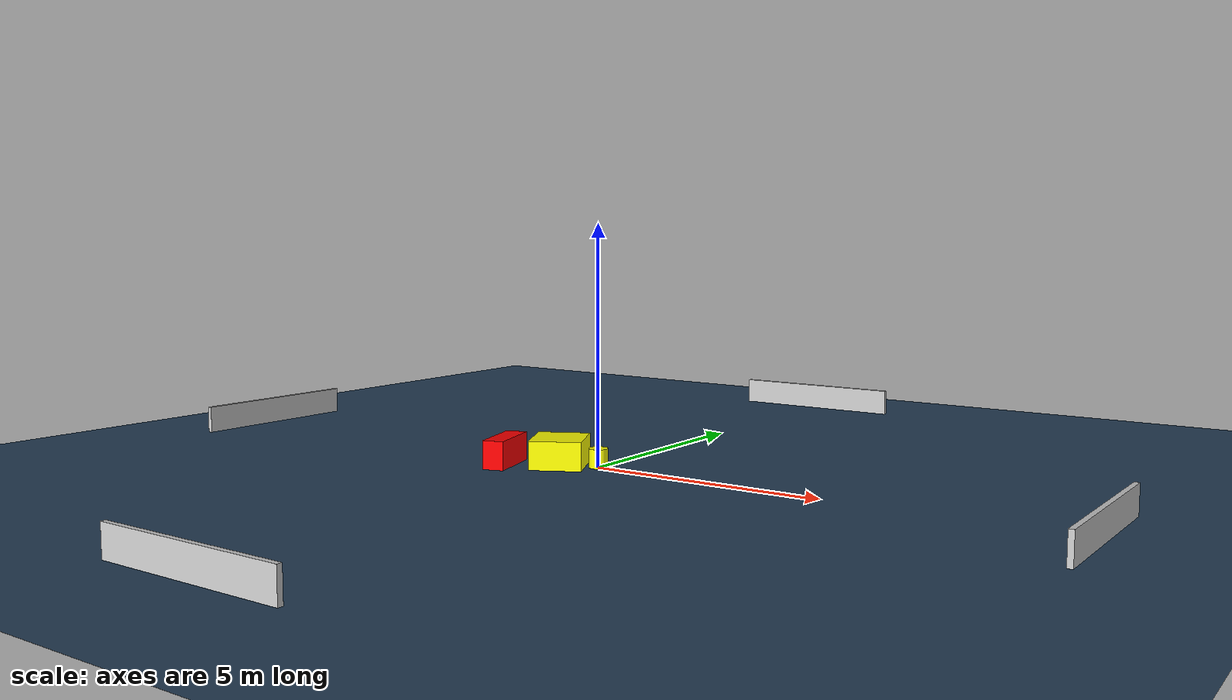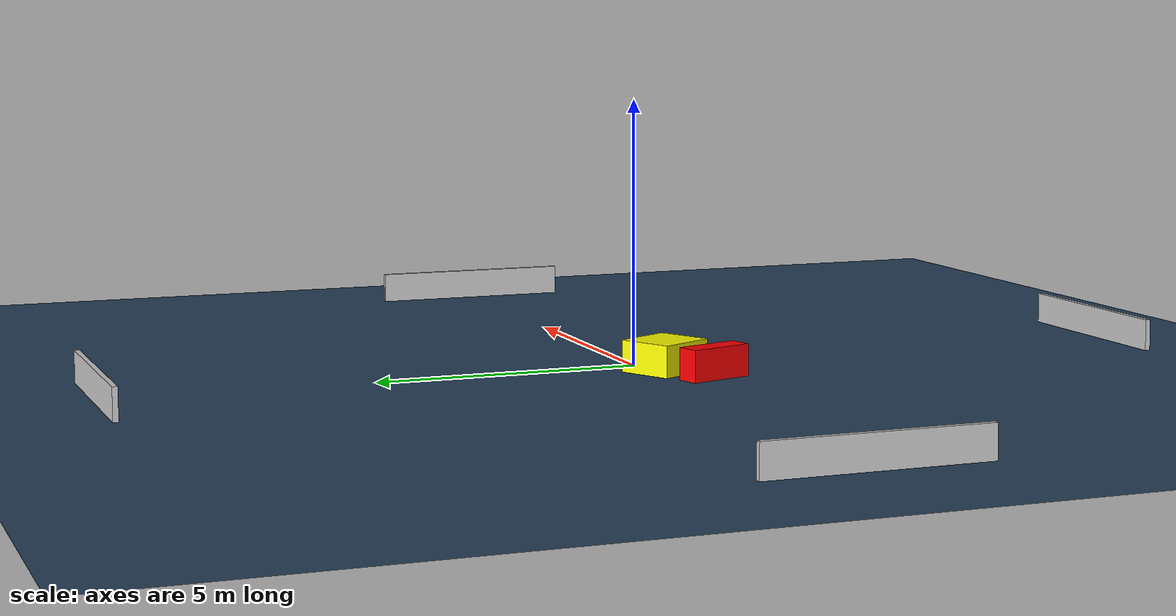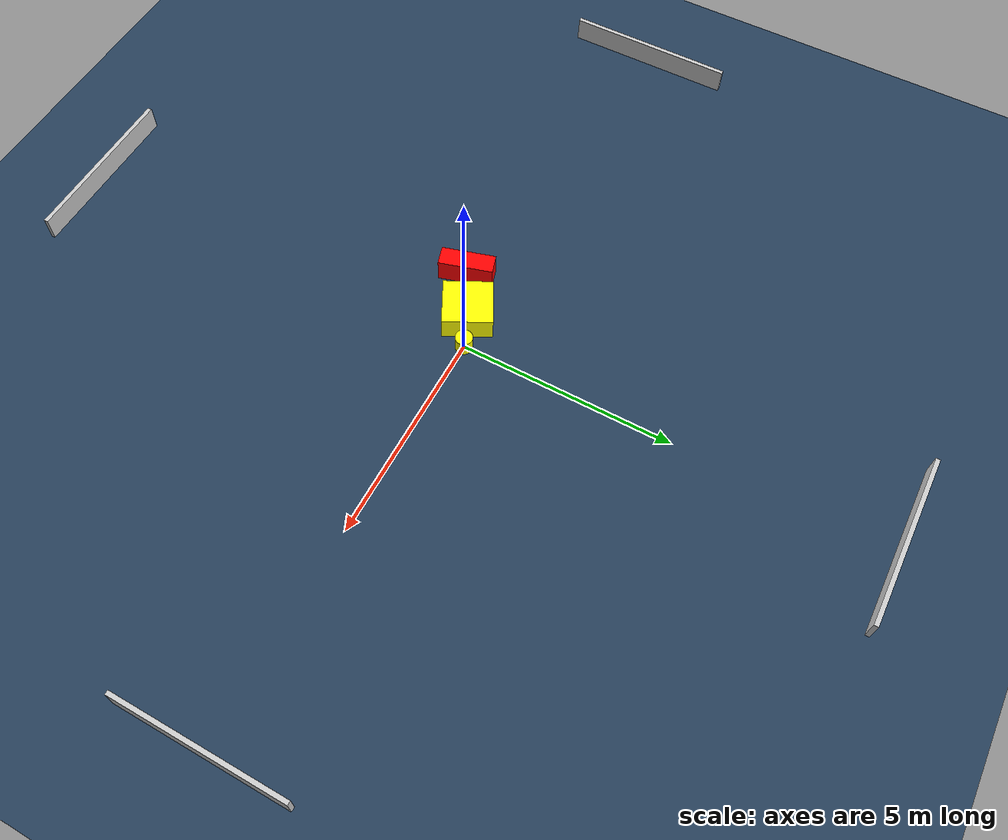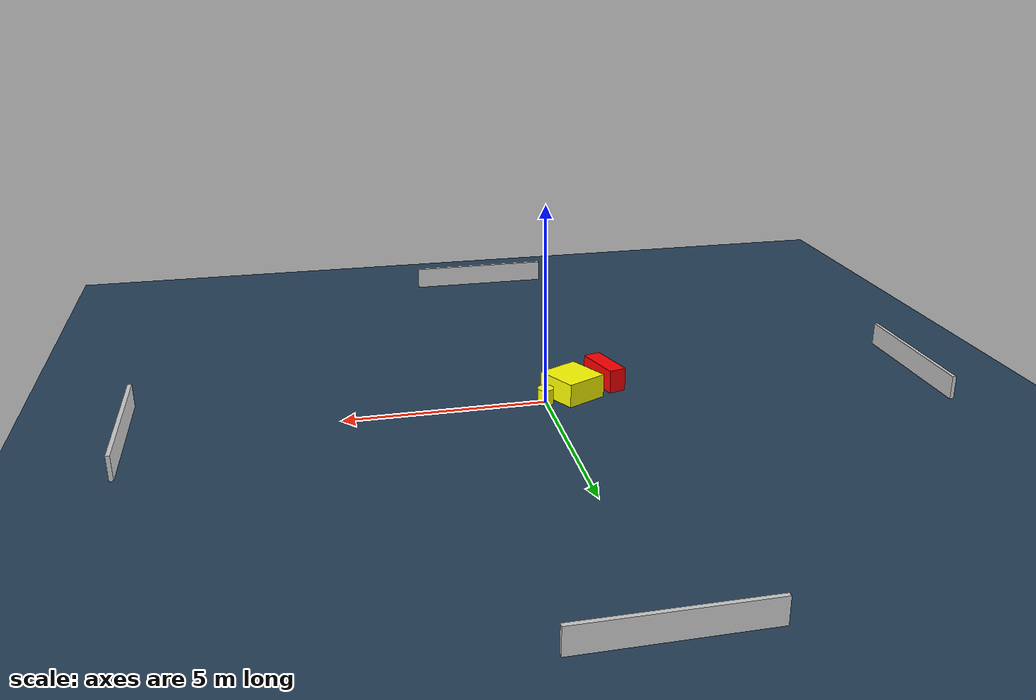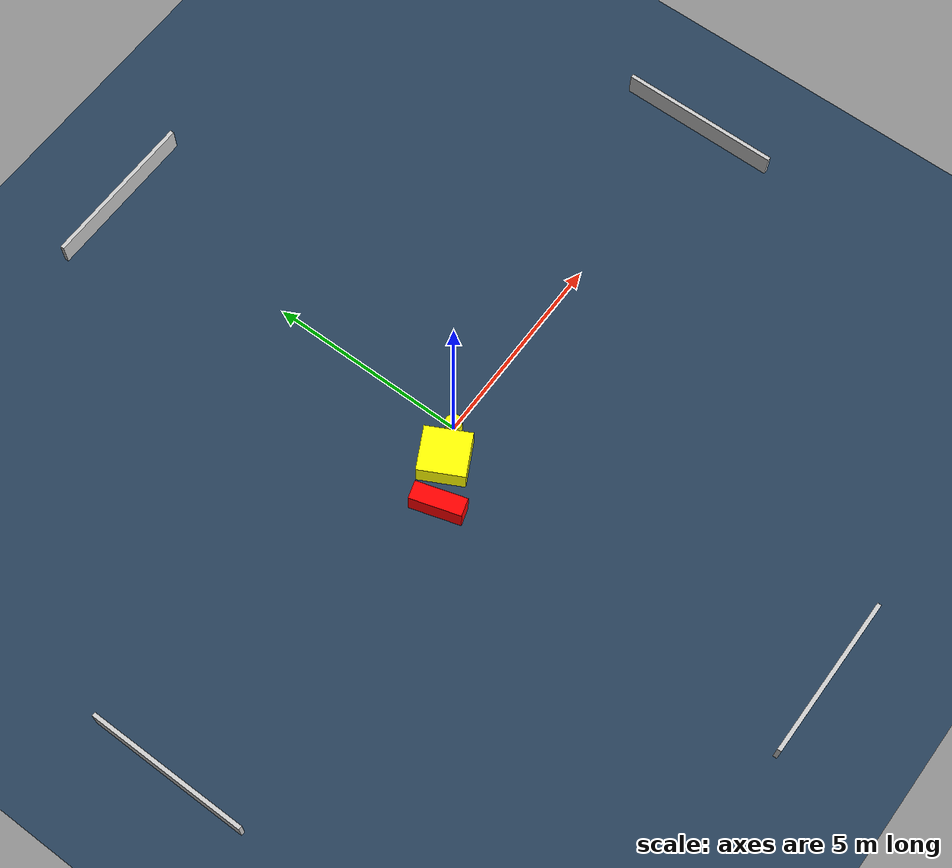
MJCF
<?xml version="1.0" ?>
<mujoco model="generated_environment">
  <option timestep="0.01" integrator="RK4" cone="elliptic"/>
  <default>
    <geom density="1"/>
  </default>
  <asset>
    <texture builtin="gradient" height="3072" name="skybox" rgb1="0.3 0.5 0.7" rgb2="0 0 0" type="skybox" width="512"/>
    <texture builtin="checker" height="300" name="groundplane" rgb1="0.2 0.3 0.4" rgb2="0.1 0.2 0.3" type="2d" width="300"/>
    <material name="groundplane" reflectance="0.2" texrepeat="5 5" texture="groundplane"/>
  </asset>
  <worldbody>
    <light dir="0 0 -1" directional="true" pos="0 0 1.5"/>
    <geom condim="3" friction="0.5 0.005 0.001" material="groundplane" name="floor" pos="0 0 0" size="0 0 0.05" type="plane"/>
    <body name="walls">
      <geom name="wall_1" condim="4" pos="-10.0 0.0 0.3" rgba="0.800000011920929 0.800000011920929 0.800000011920929 1.0" size="0.05 2.0 0.3" type="box"/>
      <geom name="wall_2" condim="4" pos="10.0 0.0 0.3" rgba="0.800000011920929 0.800000011920929 0.800000011920929 1.0" size="0.05 2.0 0.3" type="box"/>
      <geom name="wall_3" condim="4" pos="0.0 -10.0 0.3" rgba="0.800000011920929 0.800000011920929 0.800000011920929 1.0" size="2.0 0.05 0.3" type="box"/>
      <geom name="wall_4" condim="4" pos="0.0 10.0 0.3" rgba="0.800000011920929 0.800000011920929 0.800000011920929 1.0" size="2.0 0.05 0.3" type="box"/>
    </body>
    <body name="robot">
      <joint name="joint_x" type="slide" pos="0 0 0" axis="1 0 0"/>
      <joint name="joint_y" type="slide" pos="0 0 0" axis="0 1 0"/>
      <geom name="robot" type="cylinder" pos="0.0 0.0 0.2" size="0.2 0.2 0.0" mass="5.0" friction="1.0 0.005 0.0001" condim="4" rgba="1.0 1.0 0.0 1.0"/>
    </body>
    <body name="obstacle_1_movable">
      <geom name="obstacle_1_movable" condim="4" pos="-0.7581778503894998 -0.31879260960016637 0.3" euler="0 0 207.26658923555635" friction="0.0 0.005 0.001" rgba="1.0 1.0 0.0 1.0" size="0.5476353703791881 0.5731490707531848 0.3" type="box" mass="0.1"/>
      <joint type="free"/>
    </body>
    <body name="obstacle_2_static">
      <geom name="obstacle_2_static" condim="4" pos="-1.7527769643116284 -0.8818018968400072 0.3" euler="0 0 16.71412445871212" friction="0.0 0.005 0.001" rgba="1.0 0.0 0.0 1.0" size="0.22330797348705939 0.6323307991023499 0.3" type="box"/>
    </body>
  </worldbody>
  <actuator>
    <motor name="actuator_x" joint="joint_x" gear="1" ctrlrange="-1 1"/>
    <motor name="actuator_y" joint="joint_y" gear="1" ctrlrange="-1 1"/>
  </actuator>
</mujoco>
